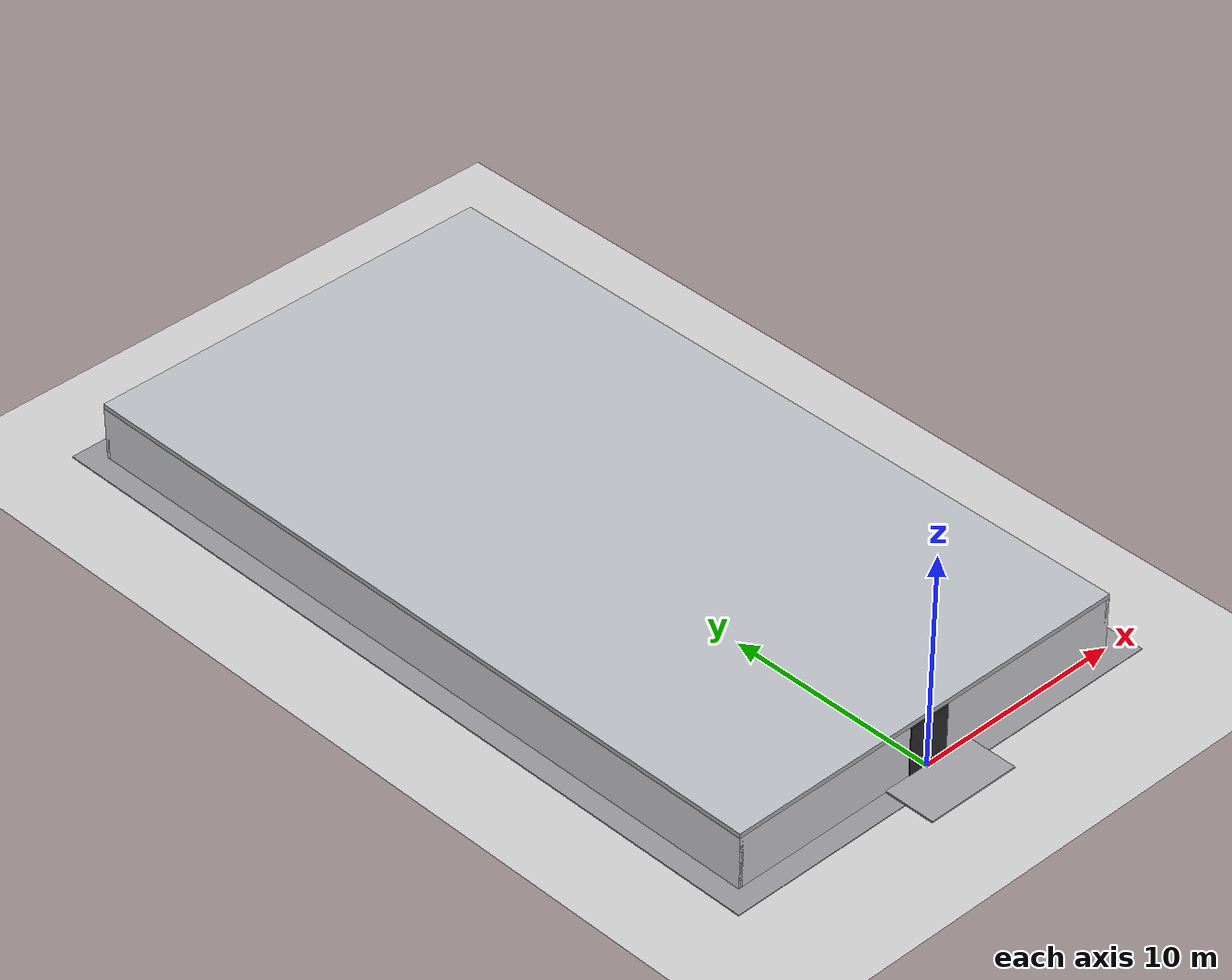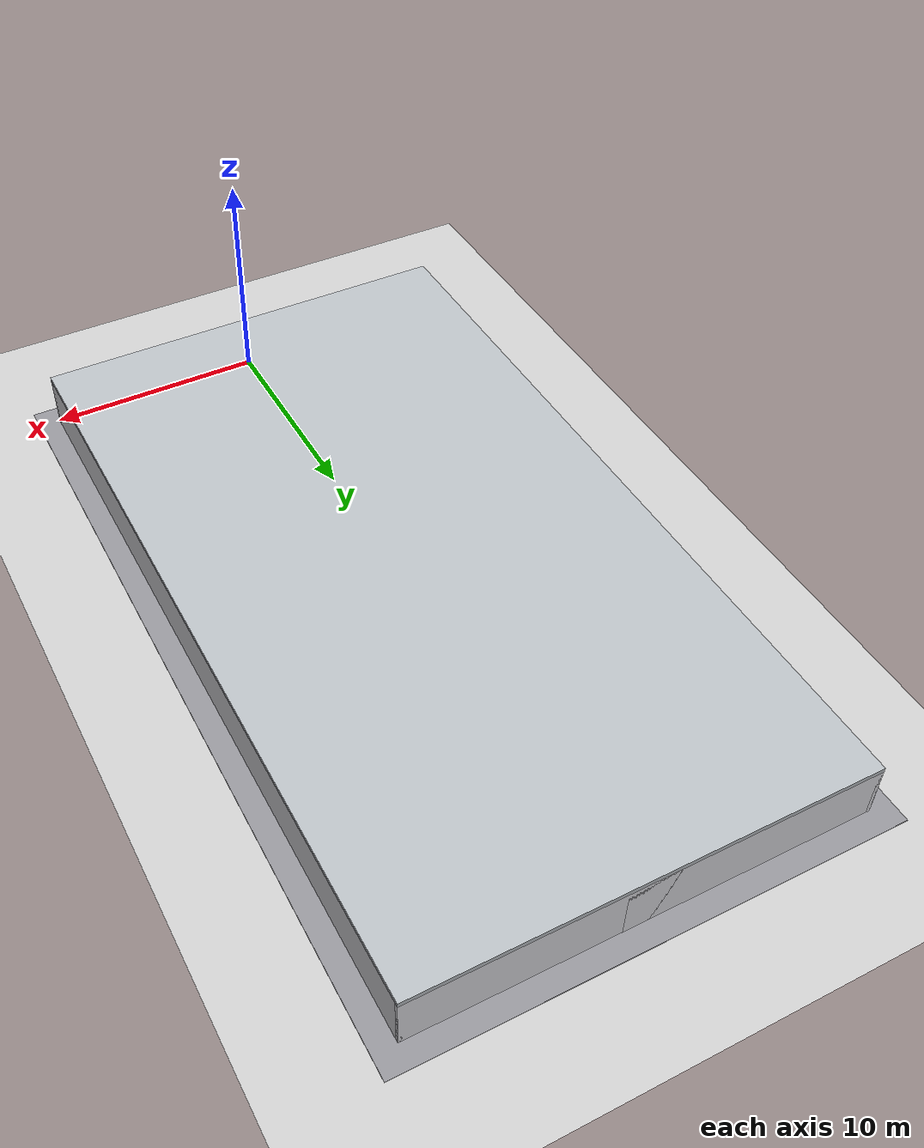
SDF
<?xml version="1.0" ?>
<sdf version="1.7">

  <world name="generated_world">

    <physics name="default_physics" default="0" type="ode">
      <max_step_size>0.001000</max_step_size>
      <real_time_factor>1.000000</real_time_factor>
      <real_time_update_rate>1000</real_time_update_rate>
      <gravity>0 0 -9.81</gravity>
      <ode>
        <solver>
          <type>quick</type>
          <iters>20</iters>
          <sor>1.3</sor>
        </solver>
        <constraints>
          <cfm>0.0</cfm>
          <erp>0.2</erp>
          <contact_max_correcting_vel>5.000000</contact_max_correcting_vel>
          <contact_surface_layer>0.001</contact_surface_layer>
        </constraints>
      </ode>
    </physics>
    <include>

      <uri>model://sun</uri>

    </include>

    <include>

      <uri>model://ground_plane</uri>

    </include>

    <model name="generated_building">

      <static>true</static>

      <pose>0 0 0 0 0 0</pose>

      <link name="foundation">

        <pose>0.0000 18.0000 -0.1500 0.0000 0.0000 0.0000</pose>

        <collision name="foundation_collision">

          <geometry>

            <box>

              <size>22.0000 38.0000 0.3000</size>

            </box>

          </geometry>

        </collision>

        <visual name="foundation_visual">

          <geometry>

            <box>

              <size>22.0000 38.0000 0.3000</size>

            </box>

          </geometry>

          <material>

            <ambient>0.58 0.58 0.60 1</ambient>

            <diffuse>0.58 0.58 0.60 1</diffuse>

          </material>

        </visual>

        <gravity>false</gravity>

      </link>

      <link name="entrance_apron">

        <pose>0.0000 -1.2000 0.0400 0.0000 0.0000 0.0000</pose>

        <collision name="entrance_apron_collision">

          <geometry>

            <box>

              <size>4.5000 2.4000 0.0800</size>

            </box>

          </geometry>

        </collision>

        <visual name="entrance_apron_visual">

          <geometry>

            <box>

              <size>4.5000 2.4000 0.0800</size>

            </box>

          </geometry>

          <material>

            <ambient>0.62 0.62 0.64 1</ambient>

            <diffuse>0.62 0.62 0.64 1</diffuse>

          </material>

        </visual>

        <gravity>false</gravity>

      </link>

      <link name="slab_floor_0_0">

        <pose>0.0000 21.9250 -0.1100 0.0000 0.0000 0.0000</pose>

        <collision name="slab_floor_0_0_collision">

          <geometry>

            <box>

              <size>20.0000 28.1500 0.2200</size>

            </box>

          </geometry>

        </collision>

        <visual name="slab_floor_0_0_visual">

          <geometry>

            <box>

              <size>20.0000 28.1500 0.2200</size>

            </box>

          </geometry>

          <material>

            <ambient>0.76 0.76 0.77 1</ambient>

            <diffuse>0.76 0.76 0.77 1</diffuse>

          </material>

        </visual>

        <gravity>false</gravity>

      </link>

      <link name="slab_floor_0_1">

        <pose>-7.4700 3.9250 -0.1100 0.0000 0.0000 0.0000</pose>

        <collision name="slab_floor_0_1_collision">

          <geometry>

            <box>

              <size>5.0600 7.8500 0.2200</size>

            </box>

          </geometry>

        </collision>

        <visual name="slab_floor_0_1_visual">

          <geometry>

            <box>

              <size>5.0600 7.8500 0.2200</size>

            </box>

          </geometry>

          <material>

            <ambient>0.76 0.76 0.77 1</ambient>

            <diffuse>0.76 0.76 0.77 1</diffuse>

          </material>

        </visual>

        <gravity>false</gravity>

      </link>

      <link name="slab_floor_0_2">

        <pose>-1.3300 3.9250 -0.1100 0.0000 0.0000 0.0000</pose>

        <collision name="slab_floor_0_2_collision">

          <geometry>

            <box>

              <size>0.4600 7.8500 0.2200</size>

            </box>

          </geometry>

        </collision>

        <visual name="slab_floor_0_2_visual">

          <geometry>

            <box>

              <size>0.4600 7.8500 0.2200</size>

            </box>

          </geometry>

          <material>

            <ambient>0.76 0.76 0.77 1</ambient>

            <diffuse>0.76 0.76 0.77 1</diffuse>

          </material>

        </visual>

        <gravity>false</gravity>

      </link>

      <link name="slab_floor_0_3">

        <pose>0.0000 3.9250 -0.1100 0.0000 0.0000 0.0000</pose>

        <collision name="slab_floor_0_3_collision">

          <geometry>

            <box>

              <size>2.2000 7.8500 0.2200</size>

            </box>

          </geometry>

        </collision>

        <visual name="slab_floor_0_3_visual">

          <geometry>

            <box>

              <size>2.2000 7.8500 0.2200</size>

            </box>

          </geometry>

          <material>

            <ambient>0.76 0.76 0.77 1</ambient>

            <diffuse>0.76 0.76 0.77 1</diffuse>

          </material>

        </visual>

        <gravity>false</gravity>

      </link>

      <link name="slab_floor_0_4">

        <pose>1.3300 3.9250 -0.1100 0.0000 0.0000 0.0000</pose>

        <collision name="slab_floor_0_4_collision">

          <geometry>

            <box>

              <size>0.4600 7.8500 0.2200</size>

            </box>

          </geometry>

        </collision>

        <visual name="slab_floor_0_4_visual">

          <geometry>

            <box>

              <size>0.4600 7.8500 0.2200</size>

            </box>

          </geometry>

          <material>

            <ambient>0.76 0.76 0.77 1</ambient>

            <diffuse>0.76 0.76 0.77 1</diffuse>

          </material>

        </visual>

        <gravity>false</gravity>

      </link>

      <link name="slab_floor_0_5">

        <pose>7.0700 3.9250 -0.1100 0.0000 0.0000 0.0000</pose>

        <collision name="slab_floor_0_5_collision">

          <geometry>

            <box>

              <size>5.8600 7.8500 0.2200</size>

            </box>

          </geometry>

        </collision>

        <visual name="slab_floor_0_5_visual">

          <geometry>

            <box>

              <size>5.8600 7.8500 0.2200</size>

            </box>

          </geometry>

          <material>

            <ambient>0.76 0.76 0.77 1</ambient>

            <diffuse>0.76 0.76 0.77 1</diffuse>

          </material>

        </visual>

        <gravity>false</gravity>

      </link>

      <link name="stair_edge_infill_floor_0">

        <pose>-1.6500 3.8500 -0.1100 0.0000 0.0000 0.0000</pose>

        <collision name="stair_edge_infill_floor_0_collision">

          <geometry>

            <box>

              <size>0.1800 6.0000 0.2200</size>

            </box>

          </geometry>

        </collision>

        <visual name="stair_edge_infill_floor_0_visual">

          <geometry>

            <box>

              <size>0.1800 6.0000 0.2200</size>

            </box>

          </geometry>

          <material>

            <ambient>0.76 0.76 0.77 1</ambient>

            <diffuse>0.76 0.76 0.77 1</diffuse>

          </material>

        </visual>

        <gravity>false</gravity>

      </link>

      <link name="exterior_west_floor_0">

        <pose>-9.9100 18.0000 1.2250 0.0000 0.0000 0.0000</pose>

        <collision name="exterior_west_floor_0_collision">

          <geometry>

            <box>

              <size>0.1800 36.0000 2.4500</size>

            </box>

          </geometry>

        </collision>

        <visual name="exterior_west_floor_0_visual">

          <geometry>

            <box>

              <size>0.1800 36.0000 2.4500</size>

            </box>

          </geometry>

          <material>

            <ambient>0.86 0.86 0.88 1</ambient>

            <diffuse>0.86 0.86 0.88 1</diffuse>

          </material>

        </visual>

        <gravity>false</gravity>

      </link>

      <link name="exterior_east_floor_0">

        <pose>9.9100 18.0000 1.2250 0.0000 0.0000 0.0000</pose>

        <collision name="exterior_east_floor_0_collision">

          <geometry>

            <box>

              <size>0.1800 36.0000 2.4500</size>

            </box>

          </geometry>

        </collision>

        <visual name="exterior_east_floor_0_visual">

          <geometry>

            <box>

              <size>0.1800 36.0000 2.4500</size>

            </box>

          </geometry>

          <material>

            <ambient>0.86 0.86 0.88 1</ambient>

            <diffuse>0.86 0.86 0.88 1</diffuse>

          </material>

        </visual>

        <gravity>false</gravity>

      </link>

      <link name="exterior_north_floor_0">

        <pose>0.0000 35.9100 1.2250 0.0000 0.0000 0.0000</pose>

        <collision name="exterior_north_floor_0_collision">

          <geometry>

            <box>

              <size>20.0000 0.1800 2.4500</size>

            </box>

          </geometry>

        </collision>

        <visual name="exterior_north_floor_0_visual">

          <geometry>

            <box>

              <size>20.0000 0.1800 2.4500</size>

            </box>

          </geometry>

          <material>

            <ambient>0.86 0.86 0.88 1</ambient>

            <diffuse>0.86 0.86 0.88 1</diffuse>

          </material>

        </visual>

        <gravity>false</gravity>

      </link>

      <link name="exterior_south_entrance_left">

        <pose>-5.5100 0.0900 1.2250 0.0000 0.0000 0.0000</pose>

        <collision name="exterior_south_entrance_left_collision">

          <geometry>

            <box>

              <size>8.9800 0.1800 2.4500</size>

            </box>

          </geometry>

        </collision>

        <visual name="exterior_south_entrance_left_visual">

          <geometry>

            <box>

              <size>8.9800 0.1800 2.4500</size>

            </box>

          </geometry>

          <material>

            <ambient>0.86 0.86 0.88 1</ambient>

            <diffuse>0.86 0.86 0.88 1</diffuse>

          </material>

        </visual>

        <gravity>false</gravity>

      </link>

      <link name="exterior_south_entrance_right">

        <pose>5.5100 0.0900 1.2250 0.0000 0.0000 0.0000</pose>

        <collision name="exterior_south_entrance_right_collision">

          <geometry>

            <box>

              <size>8.9800 0.1800 2.4500</size>

            </box>

          </geometry>

        </collision>

        <visual name="exterior_south_entrance_right_visual">

          <geometry>

            <box>

              <size>8.9800 0.1800 2.4500</size>

            </box>

          </geometry>

          <material>

            <ambient>0.86 0.86 0.88 1</ambient>

            <diffuse>0.86 0.86 0.88 1</diffuse>

          </material>

        </visual>

        <gravity>false</gravity>

      </link>

      <link name="north_end_wall_floor_0">

        <pose>0.0000 35.9100 1.2250 0.0000 0.0000 0.0000</pose>

        <collision name="north_end_wall_floor_0_collision">

          <geometry>

            <box>

              <size>2.2000 0.1800 2.4500</size>

            </box>

          </geometry>

        </collision>

        <visual name="north_end_wall_floor_0_visual">

          <geometry>

            <box>

              <size>2.2000 0.1800 2.4500</size>

            </box>

          </geometry>

          <material>

            <ambient>0.86 0.86 0.88 1</ambient>

            <diffuse>0.86 0.86 0.88 1</diffuse>

          </material>

        </visual>

        <gravity>false</gravity>

      </link>

      <link name="floor_0_room_0_corridor_wall_lower">

        <pose>-1.1900 11.0575 1.2250 0.0000 0.0000 0.0000</pose>

        <collision name="floor_0_room_0_corridor_wall_lower_collision">

          <geometry>

            <box>

              <size>0.1800 6.4150 2.4500</size>

            </box>

          </geometry>

        </collision>

        <visual name="floor_0_room_0_corridor_wall_lower_visual">

          <geometry>

            <box>

              <size>0.1800 6.4150 2.4500</size>

            </box>

          </geometry>

          <material>

            <ambient>0.86 0.86 0.88 1</ambient>

            <diffuse>0.86 0.86 0.88 1</diffuse>

          </material>

        </visual>

        <gravity>false</gravity>

      </link>

      <link name="floor_0_room_0_corridor_wall_upper">

        <pose>-1.1900 18.6725 1.2250 0.0000 0.0000 0.0000</pose>

        <collision name="floor_0_room_0_corridor_wall_upper_collision">

          <geometry>

            <box>

              <size>0.1800 6.4150 2.4500</size>

            </box>

          </geometry>

        </collision>

        <visual name="floor_0_room_0_corridor_wall_upper_visual">

          <geometry>

            <box>

              <size>0.1800 6.4150 2.4500</size>

            </box>

          </geometry>

          <material>

            <ambient>0.86 0.86 0.88 1</ambient>

            <diffuse>0.86 0.86 0.88 1</diffuse>

          </material>

        </visual>

        <gravity>false</gravity>

      </link>

      <link name="floor_0_room_0_west_wall">

        <pose>-9.4100 14.8650 1.2250 0.0000 0.0000 0.0000</pose>

        <collision name="floor_0_room_0_west_wall_collision">

          <geometry>

            <box>

              <size>0.1800 14.0300 2.4500</size>

            </box>

          </geometry>

        </collision>

        <visual name="floor_0_room_0_west_wall_visual">

          <geometry>

            <box>

              <size>0.1800 14.0300 2.4500</size>

            </box>

          </geometry>

          <material>

            <ambient>0.86 0.86 0.88 1</ambient>

            <diffuse>0.86 0.86 0.88 1</diffuse>

          </material>

        </visual>

        <gravity>false</gravity>

      </link>

      <link name="floor_0_room_0_south_wall">

        <pose>-5.3000 7.9400 1.2250 0.0000 0.0000 0.0000</pose>

        <collision name="floor_0_room_0_south_wall_collision">

          <geometry>

            <box>

              <size>8.4000 0.1800 2.4500</size>

            </box>

          </geometry>

        </collision>

        <visual name="floor_0_room_0_south_wall_visual">

          <geometry>

            <box>

              <size>8.4000 0.1800 2.4500</size>

            </box>

          </geometry>

          <material>

            <ambient>0.86 0.86 0.88 1</ambient>

            <diffuse>0.86 0.86 0.88 1</diffuse>

          </material>

        </visual>

        <gravity>false</gravity>

      </link>

      <link name="floor_0_room_0_north_wall">

        <pose>-5.3000 21.7900 1.2250 0.0000 0.0000 0.0000</pose>

        <collision name="floor_0_room_0_north_wall_collision">

          <geometry>

            <box>

              <size>8.4000 0.1800 2.4500</size>

            </box>

          </geometry>

        </collision>

        <visual name="floor_0_room_0_north_wall_visual">

          <geometry>

            <box>

              <size>8.4000 0.1800 2.4500</size>

            </box>

          </geometry>

          <material>

            <ambient>0.86 0.86 0.88 1</ambient>

            <diffuse>0.86 0.86 0.88 1</diffuse>

          </material>

        </visual>

        <gravity>false</gravity>

      </link>

      <link name="floor_0_room_1_corridor_wall_lower">

        <pose>1.1900 11.0575 1.2250 0.0000 0.0000 0.0000</pose>

        <collision name="floor_0_room_1_corridor_wall_lower_collision">

          <geometry>

            <box>

              <size>0.1800 6.4150 2.4500</size>

            </box>

          </geometry>

        </collision>

        <visual name="floor_0_room_1_corridor_wall_lower_visual">

          <geometry>

            <box>

              <size>0.1800 6.4150 2.4500</size>

            </box>

          </geometry>

          <material>

            <ambient>0.86 0.86 0.88 1</ambient>

            <diffuse>0.86 0.86 0.88 1</diffuse>

          </material>

        </visual>

        <gravity>false</gravity>

      </link>

      <link name="floor_0_room_1_corridor_wall_upper">

        <pose>1.1900 18.6725 1.2250 0.0000 0.0000 0.0000</pose>

        <collision name="floor_0_room_1_corridor_wall_upper_collision">

          <geometry>

            <box>

              <size>0.1800 6.4150 2.4500</size>

            </box>

          </geometry>

        </collision>

        <visual name="floor_0_room_1_corridor_wall_upper_visual">

          <geometry>

            <box>

              <size>0.1800 6.4150 2.4500</size>

            </box>

          </geometry>

          <material>

            <ambient>0.86 0.86 0.88 1</ambient>

            <diffuse>0.86 0.86 0.88 1</diffuse>

          </material>

        </visual>

        <gravity>false</gravity>

      </link>

      <link name="floor_0_room_1_east_wall">

        <pose>9.4100 14.8650 1.2250 0.0000 0.0000 0.0000</pose>

        <collision name="floor_0_room_1_east_wall_collision">

          <geometry>

            <box>

              <size>0.1800 14.0300 2.4500</size>

            </box>

          </geometry>

        </collision>

        <visual name="floor_0_room_1_east_wall_visual">

          <geometry>

            <box>

              <size>0.1800 14.0300 2.4500</size>

            </box>

          </geometry>

          <material>

            <ambient>0.86 0.86 0.88 1</ambient>

            <diffuse>0.86 0.86 0.88 1</diffuse>

          </material>

        </visual>

        <gravity>false</gravity>

      </link>

      <link name="floor_0_room_1_south_wall">

        <pose>5.3000 7.9400 1.2250 0.0000 0.0000 0.0000</pose>

        <collision name="floor_0_room_1_south_wall_collision">

          <geometry>

            <box>

              <size>8.4000 0.1800 2.4500</size>

            </box>

          </geometry>

        </collision>

        <visual name="floor_0_room_1_south_wall_visual">

          <geometry>

            <box>

              <size>8.4000 0.1800 2.4500</size>

            </box>

          </geometry>

          <material>

            <ambient>0.86 0.86 0.88 1</ambient>

            <diffuse>0.86 0.86 0.88 1</diffuse>

          </material>

        </visual>

        <gravity>false</gravity>

      </link>

      <link name="floor_0_room_1_north_wall">

        <pose>5.3000 21.7900 1.2250 0.0000 0.0000 0.0000</pose>

        <collision name="floor_0_room_1_north_wall_collision">

          <geometry>

            <box>

              <size>8.4000 0.1800 2.4500</size>

            </box>

          </geometry>

        </collision>

        <visual name="floor_0_room_1_north_wall_visual">

          <geometry>

            <box>

              <size>8.4000 0.1800 2.4500</size>

            </box>

          </geometry>

          <material>

            <ambient>0.86 0.86 0.88 1</ambient>

            <diffuse>0.86 0.86 0.88 1</diffuse>

          </material>

        </visual>

        <gravity>false</gravity>

      </link>

      <link name="floor_0_room_2_corridor_wall_lower">

        <pose>-1.1900 25.0875 1.2250 0.0000 0.0000 0.0000</pose>

        <collision name="floor_0_room_2_corridor_wall_lower_collision">

          <geometry>

            <box>

              <size>0.1800 6.4150 2.4500</size>

            </box>

          </geometry>

        </collision>

        <visual name="floor_0_room_2_corridor_wall_lower_visual">

          <geometry>

            <box>

              <size>0.1800 6.4150 2.4500</size>

            </box>

          </geometry>

          <material>

            <ambient>0.86 0.86 0.88 1</ambient>

            <diffuse>0.86 0.86 0.88 1</diffuse>

          </material>

        </visual>

        <gravity>false</gravity>

      </link>

      <link name="floor_0_room_2_corridor_wall_upper">

        <pose>-1.1900 32.7025 1.2250 0.0000 0.0000 0.0000</pose>

        <collision name="floor_0_room_2_corridor_wall_upper_collision">

          <geometry>

            <box>

              <size>0.1800 6.4150 2.4500</size>

            </box>

          </geometry>

        </collision>

        <visual name="floor_0_room_2_corridor_wall_upper_visual">

          <geometry>

            <box>

              <size>0.1800 6.4150 2.4500</size>

            </box>

          </geometry>

          <material>

            <ambient>0.86 0.86 0.88 1</ambient>

            <diffuse>0.86 0.86 0.88 1</diffuse>

          </material>

        </visual>

        <gravity>false</gravity>

      </link>

      <link name="floor_0_room_2_west_wall">

        <pose>-9.4100 28.8950 1.2250 0.0000 0.0000 0.0000</pose>

        <collision name="floor_0_room_2_west_wall_collision">

          <geometry>

            <box>

              <size>0.1800 14.0300 2.4500</size>

            </box>

          </geometry>

        </collision>

        <visual name="floor_0_room_2_west_wall_visual">

          <geometry>

            <box>

              <size>0.1800 14.0300 2.4500</size>

            </box>

          </geometry>

          <material>

            <ambient>0.86 0.86 0.88 1</ambient>

            <diffuse>0.86 0.86 0.88 1</diffuse>

          </material>

        </visual>

        <gravity>false</gravity>

      </link>

      <link name="floor_0_room_2_south_wall">

        <pose>-5.3000 21.9700 1.2250 0.0000 0.0000 0.0000</pose>

        <collision name="floor_0_room_2_south_wall_collision">

          <geometry>

            <box>

              <size>8.4000 0.1800 2.4500</size>

            </box>

          </geometry>

        </collision>

        <visual name="floor_0_room_2_south_wall_visual">

          <geometry>

            <box>

              <size>8.4000 0.1800 2.4500</size>

            </box>

          </geometry>

          <material>

            <ambient>0.86 0.86 0.88 1</ambient>

            <diffuse>0.86 0.86 0.88 1</diffuse>

          </material>

        </visual>

        <gravity>false</gravity>

      </link>

      <link name="floor_0_room_2_north_wall">

        <pose>-5.3000 35.8200 1.2250 0.0000 0.0000 0.0000</pose>

        <collision name="floor_0_room_2_north_wall_collision">

          <geometry>

            <box>

              <size>8.4000 0.1800 2.4500</size>

            </box>

          </geometry>

        </collision>

        <visual name="floor_0_room_2_north_wall_visual">

          <geometry>

            <box>

              <size>8.4000 0.1800 2.4500</size>

            </box>

          </geometry>

          <material>

            <ambient>0.86 0.86 0.88 1</ambient>

            <diffuse>0.86 0.86 0.88 1</diffuse>

          </material>

        </visual>

        <gravity>false</gravity>

      </link>

      <link name="floor_0_room_3_corridor_wall_lower">

        <pose>1.1900 25.0875 1.2250 0.0000 0.0000 0.0000</pose>

        <collision name="floor_0_room_3_corridor_wall_lower_collision">

          <geometry>

            <box>

              <size>0.1800 6.4150 2.4500</size>

            </box>

          </geometry>

        </collision>

        <visual name="floor_0_room_3_corridor_wall_lower_visual">

          <geometry>

            <box>

              <size>0.1800 6.4150 2.4500</size>

            </box>

          </geometry>

          <material>

            <ambient>0.86 0.86 0.88 1</ambient>

            <diffuse>0.86 0.86 0.88 1</diffuse>

          </material>

        </visual>

        <gravity>false</gravity>

      </link>

      <link name="floor_0_room_3_corridor_wall_upper">

        <pose>1.1900 32.7025 1.2250 0.0000 0.0000 0.0000</pose>

        <collision name="floor_0_room_3_corridor_wall_upper_collision">

          <geometry>

            <box>

              <size>0.1800 6.4150 2.4500</size>

            </box>

          </geometry>

        </collision>

        <visual name="floor_0_room_3_corridor_wall_upper_visual">

          <geometry>

            <box>

              <size>0.1800 6.4150 2.4500</size>

            </box>

          </geometry>

          <material>

            <ambient>0.86 0.86 0.88 1</ambient>

            <diffuse>0.86 0.86 0.88 1</diffuse>

          </material>

        </visual>

        <gravity>false</gravity>

      </link>

      <link name="floor_0_room_3_east_wall">

        <pose>9.4100 28.8950 1.2250 0.0000 0.0000 0.0000</pose>

        <collision name="floor_0_room_3_east_wall_collision">

          <geometry>

            <box>

              <size>0.1800 14.0300 2.4500</size>

            </box>

          </geometry>

        </collision>

        <visual name="floor_0_room_3_east_wall_visual">

          <geometry>

            <box>

              <size>0.1800 14.0300 2.4500</size>

            </box>

          </geometry>

          <material>

            <ambient>0.86 0.86 0.88 1</ambient>

            <diffuse>0.86 0.86 0.88 1</diffuse>

          </material>

        </visual>

        <gravity>false</gravity>

      </link>

      <link name="floor_0_room_3_south_wall">

        <pose>5.3000 21.9700 1.2250 0.0000 0.0000 0.0000</pose>

        <collision name="floor_0_room_3_south_wall_collision">

          <geometry>

            <box>

              <size>8.4000 0.1800 2.4500</size>

            </box>

          </geometry>

        </collision>

        <visual name="floor_0_room_3_south_wall_visual">

          <geometry>

            <box>

              <size>8.4000 0.1800 2.4500</size>

            </box>

          </geometry>

          <material>

            <ambient>0.86 0.86 0.88 1</ambient>

            <diffuse>0.86 0.86 0.88 1</diffuse>

          </material>

        </visual>

        <gravity>false</gravity>

      </link>

      <link name="floor_0_room_3_north_wall">

        <pose>5.3000 35.8200 1.2250 0.0000 0.0000 0.0000</pose>

        <collision name="floor_0_room_3_north_wall_collision">

          <geometry>

            <box>

              <size>8.4000 0.1800 2.4500</size>

            </box>

          </geometry>

        </collision>

        <visual name="floor_0_room_3_north_wall_visual">

          <geometry>

            <box>

              <size>8.4000 0.1800 2.4500</size>

            </box>

          </geometry>

          <material>

            <ambient>0.86 0.86 0.88 1</ambient>

            <diffuse>0.86 0.86 0.88 1</diffuse>

          </material>

        </visual>

        <gravity>false</gravity>

      </link>

      <link name="stair_core_floor_0_west">

        <pose>-4.7600 3.8500 1.2250 0.0000 0.0000 0.0000</pose>

        <collision name="stair_core_floor_0_west_collision">

          <geometry>

            <box>

              <size>0.1800 6.0000 2.4500</size>

            </box>

          </geometry>

        </collision>

        <visual name="stair_core_floor_0_west_visual">

          <geometry>

            <box>

              <size>0.1800 6.0000 2.4500</size>

            </box>

          </geometry>

          <material>

            <ambient>0.86 0.86 0.88 1</ambient>

            <diffuse>0.86 0.86 0.88 1</diffuse>

          </material>

        </visual>

        <gravity>false</gravity>

      </link>

      <link name="stair_core_floor_0_south">

        <pose>-3.2500 0.9400 1.2250 0.0000 0.0000 0.0000</pose>

        <collision name="stair_core_floor_0_south_collision">

          <geometry>

            <box>

              <size>3.2000 0.1800 2.4500</size>

            </box>

          </geometry>

        </collision>

        <visual name="stair_core_floor_0_south_visual">

          <geometry>

            <box>

              <size>3.2000 0.1800 2.4500</size>

            </box>

          </geometry>

          <material>

            <ambient>0.86 0.86 0.88 1</ambient>

            <diffuse>0.86 0.86 0.88 1</diffuse>

          </material>

        </visual>

        <gravity>false</gravity>

      </link>

      <link name="stair_core_floor_0_north">

        <pose>-3.2500 6.7600 1.2250 0.0000 0.0000 0.0000</pose>

        <collision name="stair_core_floor_0_north_collision">

          <geometry>

            <box>

              <size>3.2000 0.1800 2.4500</size>

            </box>

          </geometry>

        </collision>

        <visual name="stair_core_floor_0_north_visual">

          <geometry>

            <box>

              <size>3.2000 0.1800 2.4500</size>

            </box>

          </geometry>

          <material>

            <ambient>0.86 0.86 0.88 1</ambient>

            <diffuse>0.86 0.86 0.88 1</diffuse>

          </material>

        </visual>

        <gravity>false</gravity>

      </link>

      <link name="elevator_core_floor_0_west_lower">

        <pose>1.7400 1.6150 1.2250 0.0000 0.0000 0.0000</pose>

        <collision name="elevator_core_floor_0_west_lower_collision">

          <geometry>

            <box>

              <size>0.1800 0.7300 2.4500</size>

            </box>

          </geometry>

        </collision>

        <visual name="elevator_core_floor_0_west_lower_visual">

          <geometry>

            <box>

              <size>0.1800 0.7300 2.4500</size>

            </box>

          </geometry>

          <material>

            <ambient>0.86 0.86 0.88 1</ambient>

            <diffuse>0.86 0.86 0.88 1</diffuse>

          </material>

        </visual>

        <gravity>false</gravity>

      </link>

      <link name="elevator_core_floor_0_west_upper">

        <pose>1.7400 3.5850 1.2250 0.0000 0.0000 0.0000</pose>

        <collision name="elevator_core_floor_0_west_upper_collision">

          <geometry>

            <box>

              <size>0.1800 0.7300 2.4500</size>

            </box>

          </geometry>

        </collision>

        <visual name="elevator_core_floor_0_west_upper_visual">

          <geometry>

            <box>

              <size>0.1800 0.7300 2.4500</size>

            </box>

          </geometry>

          <material>

            <ambient>0.86 0.86 0.88 1</ambient>

            <diffuse>0.86 0.86 0.88 1</diffuse>

          </material>

        </visual>

        <gravity>false</gravity>

      </link>

      <link name="elevator_core_floor_0_east">

        <pose>3.9600 2.6000 1.2250 0.0000 0.0000 0.0000</pose>

        <collision name="elevator_core_floor_0_east_collision">

          <geometry>

            <box>

              <size>0.1800 2.7000 2.4500</size>

            </box>

          </geometry>

        </collision>

        <visual name="elevator_core_floor_0_east_visual">

          <geometry>

            <box>

              <size>0.1800 2.7000 2.4500</size>

            </box>

          </geometry>

          <material>

            <ambient>0.86 0.86 0.88 1</ambient>

            <diffuse>0.86 0.86 0.88 1</diffuse>

          </material>

        </visual>

        <gravity>false</gravity>

      </link>

      <link name="elevator_core_floor_0_south">

        <pose>2.8500 1.3400 1.2250 0.0000 0.0000 0.0000</pose>

        <collision name="elevator_core_floor_0_south_collision">

          <geometry>

            <box>

              <size>2.4000 0.1800 2.4500</size>

            </box>

          </geometry>

        </collision>

        <visual name="elevator_core_floor_0_south_visual">

          <geometry>

            <box>

              <size>2.4000 0.1800 2.4500</size>

            </box>

          </geometry>

          <material>

            <ambient>0.86 0.86 0.88 1</ambient>

            <diffuse>0.86 0.86 0.88 1</diffuse>

          </material>

        </visual>

        <gravity>false</gravity>

      </link>

      <link name="elevator_core_floor_0_north">

        <pose>2.8500 3.8600 1.2250 0.0000 0.0000 0.0000</pose>

        <collision name="elevator_core_floor_0_north_collision">

          <geometry>

            <box>

              <size>2.4000 0.1800 2.4500</size>

            </box>

          </geometry>

        </collision>

        <visual name="elevator_core_floor_0_north_visual">

          <geometry>

            <box>

              <size>2.4000 0.1800 2.4500</size>

            </box>

          </geometry>

          <material>

            <ambient>0.86 0.86 0.88 1</ambient>

            <diffuse>0.86 0.86 0.88 1</diffuse>

          </material>

        </visual>

        <gravity>false</gravity>

      </link>

      <link name="elevator_threshold_floor_0">

        <pose>1.5400 2.6000 0.0300 0.0000 0.0000 0.0000</pose>

        <collision name="elevator_threshold_floor_0_collision">

          <geometry>

            <box>

              <size>0.2200 1.5000 0.0600</size>

            </box>

          </geometry>

        </collision>

        <visual name="elevator_threshold_floor_0_visual">

          <geometry>

            <box>

              <size>0.2200 1.5000 0.0600</size>

            </box>

          </geometry>

          <material>

            <ambient>0.50 0.51 0.54 1</ambient>

            <diffuse>0.50 0.51 0.54 1</diffuse>

          </material>

        </visual>

        <gravity>false</gravity>

      </link>

      <link name="elevator_sill_infill_floor_0">

        <pose>1.6750 2.6000 -0.1100 0.0000 0.0000 0.0000</pose>

        <collision name="elevator_sill_infill_floor_0_collision">

          <geometry>

            <box>

              <size>0.0500 2.5200 0.2200</size>

            </box>

          </geometry>

        </collision>

        <visual name="elevator_sill_infill_floor_0_visual">

          <geometry>

            <box>

              <size>0.0500 2.5200 0.2200</size>

            </box>

          </geometry>

          <material>

            <ambient>0.72 0.72 0.73 1</ambient>

            <diffuse>0.72 0.72 0.73 1</diffuse>

          </material>

        </visual>

        <gravity>false</gravity>

      </link>

      <link name="elevator_header_floor_0">

        <pose>1.5900 2.6000 2.2600 0.0000 0.0000 0.0000</pose>

        <collision name="elevator_header_floor_0_collision">

          <geometry>

            <box>

              <size>0.1200 1.6000 0.2800</size>

            </box>

          </geometry>

        </collision>

        <visual name="elevator_header_floor_0_visual">

          <geometry>

            <box>

              <size>0.1200 1.6000 0.2800</size>

            </box>

          </geometry>

          <material>

            <ambient>0.50 0.51 0.54 1</ambient>

            <diffuse>0.50 0.51 0.54 1</diffuse>

          </material>

        </visual>

        <gravity>false</gravity>

      </link>

      <link name="elevator_jamb_left_floor_0">

        <pose>1.5900 1.8500 1.1000 0.0000 0.0000 0.0000</pose>

        <collision name="elevator_jamb_left_floor_0_collision">

          <geometry>

            <box>

              <size>0.1200 0.1000 2.2000</size>

            </box>

          </geometry>

        </collision>

        <visual name="elevator_jamb_left_floor_0_visual">

          <geometry>

            <box>

              <size>0.1200 0.1000 2.2000</size>

            </box>

          </geometry>

          <material>

            <ambient>0.50 0.51 0.54 1</ambient>

            <diffuse>0.50 0.51 0.54 1</diffuse>

          </material>

        </visual>

        <gravity>false</gravity>

      </link>

      <link name="elevator_jamb_right_floor_0">

        <pose>1.5900 3.3500 1.1000 0.0000 0.0000 0.0000</pose>

        <collision name="elevator_jamb_right_floor_0_collision">

          <geometry>

            <box>

              <size>0.1200 0.1000 2.2000</size>

            </box>

          </geometry>

        </collision>

        <visual name="elevator_jamb_right_floor_0_visual">

          <geometry>

            <box>

              <size>0.1200 0.1000 2.2000</size>

            </box>

          </geometry>

          <material>

            <ambient>0.50 0.51 0.54 1</ambient>

            <diffuse>0.50 0.51 0.54 1</diffuse>

          </material>

        </visual>

        <gravity>false</gravity>

      </link>

      <link name="elevator_call_panel_floor_0">

        <pose>1.5700 3.5800 1.2000 0.0000 0.0000 0.0000</pose>

        <collision name="elevator_call_panel_floor_0_collision">

          <geometry>

            <box>

              <size>0.0800 0.2200 0.3200</size>

            </box>

          </geometry>

        </collision>

        <visual name="elevator_call_panel_floor_0_visual">

          <geometry>

            <box>

              <size>0.0800 0.2200 0.3200</size>

            </box>

          </geometry>

          <material>

            <ambient>0.20 0.20 0.24 1</ambient>

            <diffuse>0.20 0.20 0.24 1</diffuse>

          </material>

        </visual>

        <gravity>false</gravity>

      </link>

      <link name="floor_0_room_0_desk">

        <pose>-7.0000 17.9225 0.4500 0.0000 0.0000 0.0000</pose>

        <collision name="floor_0_room_0_desk_collision">

          <geometry>

            <box>

              <size>1.5000 0.7000 0.7500</size>

            </box>

          </geometry>

        </collision>

        <visual name="floor_0_room_0_desk_visual">

          <geometry>

            <box>

              <size>1.5000 0.7000 0.7500</size>

            </box>

          </geometry>

          <material>

            <ambient>0.54 0.43 0.34 1</ambient>

            <diffuse>0.54 0.43 0.34 1</diffuse>

          </material>

        </visual>

        <gravity>false</gravity>

      </link>

      <link name="floor_0_room_0_chair">

        <pose>-7.0000 17.0225 0.2800 0.0000 0.0000 0.0000</pose>

        <collision name="floor_0_room_0_chair_collision">

          <geometry>

            <box>

              <size>0.5500 0.5500 0.5500</size>

            </box>

          </geometry>

        </collision>

        <visual name="floor_0_room_0_chair_visual">

          <geometry>

            <box>

              <size>0.5500 0.5500 0.5500</size>

            </box>

          </geometry>

          <material>

            <ambient>0.30 0.30 0.34 1</ambient>

            <diffuse>0.30 0.30 0.34 1</diffuse>

          </material>

        </visual>

        <gravity>false</gravity>

      </link>

      <link name="floor_0_room_0_cabinet">

        <pose>-3.6000 11.8075 0.9000 0.0000 0.0000 0.0000</pose>

        <collision name="floor_0_room_0_cabinet_collision">

          <geometry>

            <box>

              <size>0.6000 1.0000 1.8000</size>

            </box>

          </geometry>

        </collision>

        <visual name="floor_0_room_0_cabinet_visual">

          <geometry>

            <box>

              <size>0.6000 1.0000 1.8000</size>

            </box>

          </geometry>

          <material>

            <ambient>0.72 0.72 0.74 1</ambient>

            <diffuse>0.72 0.72 0.74 1</diffuse>

          </material>

        </visual>

        <gravity>false</gravity>

      </link>

      <link name="floor_0_room_0_side_table">

        <pose>-3.6000 17.9225 0.3200 0.0000 0.0000 0.0000</pose>

        <collision name="floor_0_room_0_side_table_collision">

          <geometry>

            <box>

              <size>0.7000 0.7000 0.4500</size>

            </box>

          </geometry>

        </collision>

        <visual name="floor_0_room_0_side_table_visual">

          <geometry>

            <box>

              <size>0.7000 0.7000 0.4500</size>

            </box>

          </geometry>

          <material>

            <ambient>0.52 0.42 0.33 1</ambient>

            <diffuse>0.52 0.42 0.33 1</diffuse>

          </material>

        </visual>

        <gravity>false</gravity>

      </link>

      <link name="floor_0_room_0_planter">

        <pose>-5.3000 11.8075 0.4500 0.0000 0.0000 0.0000</pose>

        <collision name="floor_0_room_0_planter_collision">

          <geometry>

            <box>

              <size>0.4500 0.4500 0.9000</size>

            </box>

          </geometry>

        </collision>

        <visual name="floor_0_room_0_planter_visual">

          <geometry>

            <box>

              <size>0.4500 0.4500 0.9000</size>

            </box>

          </geometry>

          <material>

            <ambient>0.28 0.46 0.30 1</ambient>

            <diffuse>0.28 0.46 0.30 1</diffuse>

          </material>

        </visual>

        <gravity>false</gravity>

      </link>

      <link name="floor_0_room_1_sofa_a">

        <pose>3.6000 11.8075 0.4500 0.0000 0.0000 0.0000</pose>

        <collision name="floor_0_room_1_sofa_a_collision">

          <geometry>

            <box>

              <size>1.8000 0.8000 0.8000</size>

            </box>

          </geometry>

        </collision>

        <visual name="floor_0_room_1_sofa_a_visual">

          <geometry>

            <box>

              <size>1.8000 0.8000 0.8000</size>

            </box>

          </geometry>

          <material>

            <ambient>0.24 0.36 0.54 1</ambient>

            <diffuse>0.24 0.36 0.54 1</diffuse>

          </material>

        </visual>

        <gravity>false</gravity>

      </link>

      <link name="floor_0_room_1_sofa_b">

        <pose>7.0000 11.8075 0.4500 0.0000 0.0000 3.1400</pose>

        <collision name="floor_0_room_1_sofa_b_collision">

          <geometry>

            <box>

              <size>1.8000 0.8000 0.8000</size>

            </box>

          </geometry>

        </collision>

        <visual name="floor_0_room_1_sofa_b_visual">

          <geometry>

            <box>

              <size>1.8000 0.8000 0.8000</size>

            </box>

          </geometry>

          <material>

            <ambient>0.24 0.36 0.54 1</ambient>

            <diffuse>0.24 0.36 0.54 1</diffuse>

          </material>

        </visual>

        <gravity>false</gravity>

      </link>

      <link name="floor_0_room_1_coffee_table">

        <pose>5.3000 14.8650 0.2500 0.0000 0.0000 0.0000</pose>

        <collision name="floor_0_room_1_coffee_table_collision">

          <geometry>

            <box>

              <size>0.8000 0.6000 0.4000</size>

            </box>

          </geometry>

        </collision>

        <visual name="floor_0_room_1_coffee_table_visual">

          <geometry>

            <box>

              <size>0.8000 0.6000 0.4000</size>

            </box>

          </geometry>

          <material>

            <ambient>0.60 0.48 0.34 1</ambient>

            <diffuse>0.60 0.48 0.34 1</diffuse>

          </material>

        </visual>

        <gravity>false</gravity>

      </link>

      <link name="floor_0_room_1_bookshelf">

        <pose>7.0000 17.9225 0.8500 0.0000 0.0000 0.0000</pose>

        <collision name="floor_0_room_1_bookshelf_collision">

          <geometry>

            <box>

              <size>0.4500 1.2000 1.7000</size>

            </box>

          </geometry>

        </collision>

        <visual name="floor_0_room_1_bookshelf_visual">

          <geometry>

            <box>

              <size>0.4500 1.2000 1.7000</size>

            </box>

          </geometry>

          <material>

            <ambient>0.50 0.40 0.30 1</ambient>

            <diffuse>0.50 0.40 0.30 1</diffuse>

          </material>

        </visual>

        <gravity>false</gravity>

      </link>

      <link name="floor_0_room_1_planter">

        <pose>3.6000 17.9225 0.4500 0.0000 0.0000 0.0000</pose>

        <collision name="floor_0_room_1_planter_collision">

          <geometry>

            <box>

              <size>0.4500 0.4500 0.9000</size>

            </box>

          </geometry>

        </collision>

        <visual name="floor_0_room_1_planter_visual">

          <geometry>

            <box>

              <size>0.4500 0.4500 0.9000</size>

            </box>

          </geometry>

          <material>

            <ambient>0.28 0.46 0.30 1</ambient>

            <diffuse>0.28 0.46 0.30 1</diffuse>

          </material>

        </visual>

        <gravity>false</gravity>

      </link>

      <link name="floor_0_room_2_sofa_a">

        <pose>-7.0000 25.8375 0.4500 0.0000 0.0000 0.0000</pose>

        <collision name="floor_0_room_2_sofa_a_collision">

          <geometry>

            <box>

              <size>1.8000 0.8000 0.8000</size>

            </box>

          </geometry>

        </collision>

        <visual name="floor_0_room_2_sofa_a_visual">

          <geometry>

            <box>

              <size>1.8000 0.8000 0.8000</size>

            </box>

          </geometry>

          <material>

            <ambient>0.24 0.36 0.54 1</ambient>

            <diffuse>0.24 0.36 0.54 1</diffuse>

          </material>

        </visual>

        <gravity>false</gravity>

      </link>

      <link name="floor_0_room_2_sofa_b">

        <pose>-3.6000 25.8375 0.4500 0.0000 0.0000 3.1400</pose>

        <collision name="floor_0_room_2_sofa_b_collision">

          <geometry>

            <box>

              <size>1.8000 0.8000 0.8000</size>

            </box>

          </geometry>

        </collision>

        <visual name="floor_0_room_2_sofa_b_visual">

          <geometry>

            <box>

              <size>1.8000 0.8000 0.8000</size>

            </box>

          </geometry>

          <material>

            <ambient>0.24 0.36 0.54 1</ambient>

            <diffuse>0.24 0.36 0.54 1</diffuse>

          </material>

        </visual>

        <gravity>false</gravity>

      </link>

      <link name="floor_0_room_2_coffee_table">

        <pose>-5.3000 28.8950 0.2500 0.0000 0.0000 0.0000</pose>

        <collision name="floor_0_room_2_coffee_table_collision">

          <geometry>

            <box>

              <size>0.8000 0.6000 0.4000</size>

            </box>

          </geometry>

        </collision>

        <visual name="floor_0_room_2_coffee_table_visual">

          <geometry>

            <box>

              <size>0.8000 0.6000 0.4000</size>

            </box>

          </geometry>

          <material>

            <ambient>0.60 0.48 0.34 1</ambient>

            <diffuse>0.60 0.48 0.34 1</diffuse>

          </material>

        </visual>

        <gravity>false</gravity>

      </link>

      <link name="floor_0_room_2_bookshelf">

        <pose>-3.6000 31.9525 0.8500 0.0000 0.0000 0.0000</pose>

        <collision name="floor_0_room_2_bookshelf_collision">

          <geometry>

            <box>

              <size>0.4500 1.2000 1.7000</size>

            </box>

          </geometry>

        </collision>

        <visual name="floor_0_room_2_bookshelf_visual">

          <geometry>

            <box>

              <size>0.4500 1.2000 1.7000</size>

            </box>

          </geometry>

          <material>

            <ambient>0.50 0.40 0.30 1</ambient>

            <diffuse>0.50 0.40 0.30 1</diffuse>

          </material>

        </visual>

        <gravity>false</gravity>

      </link>

      <link name="floor_0_room_2_planter">

        <pose>-7.0000 31.9525 0.4500 0.0000 0.0000 0.0000</pose>

        <collision name="floor_0_room_2_planter_collision">

          <geometry>

            <box>

              <size>0.4500 0.4500 0.9000</size>

            </box>

          </geometry>

        </collision>

        <visual name="floor_0_room_2_planter_visual">

          <geometry>

            <box>

              <size>0.4500 0.4500 0.9000</size>

            </box>

          </geometry>

          <material>

            <ambient>0.28 0.46 0.30 1</ambient>

            <diffuse>0.28 0.46 0.30 1</diffuse>

          </material>

        </visual>

        <gravity>false</gravity>

      </link>

      <link name="floor_0_room_3_desk">

        <pose>3.6000 31.9525 0.4500 0.0000 0.0000 0.0000</pose>

        <collision name="floor_0_room_3_desk_collision">

          <geometry>

            <box>

              <size>1.5000 0.7000 0.7500</size>

            </box>

          </geometry>

        </collision>

        <visual name="floor_0_room_3_desk_visual">

          <geometry>

            <box>

              <size>1.5000 0.7000 0.7500</size>

            </box>

          </geometry>

          <material>

            <ambient>0.54 0.43 0.34 1</ambient>

            <diffuse>0.54 0.43 0.34 1</diffuse>

          </material>

        </visual>

        <gravity>false</gravity>

      </link>

      <link name="floor_0_room_3_chair">

        <pose>3.6000 31.0525 0.2800 0.0000 0.0000 0.0000</pose>

        <collision name="floor_0_room_3_chair_collision">

          <geometry>

            <box>

              <size>0.5500 0.5500 0.5500</size>

            </box>

          </geometry>

        </collision>

        <visual name="floor_0_room_3_chair_visual">

          <geometry>

            <box>

              <size>0.5500 0.5500 0.5500</size>

            </box>

          </geometry>

          <material>

            <ambient>0.30 0.30 0.34 1</ambient>

            <diffuse>0.30 0.30 0.34 1</diffuse>

          </material>

        </visual>

        <gravity>false</gravity>

      </link>

      <link name="floor_0_room_3_cabinet">

        <pose>7.0000 25.8375 0.9000 0.0000 0.0000 0.0000</pose>

        <collision name="floor_0_room_3_cabinet_collision">

          <geometry>

            <box>

              <size>0.6000 1.0000 1.8000</size>

            </box>

          </geometry>

        </collision>

        <visual name="floor_0_room_3_cabinet_visual">

          <geometry>

            <box>

              <size>0.6000 1.0000 1.8000</size>

            </box>

          </geometry>

          <material>

            <ambient>0.72 0.72 0.74 1</ambient>

            <diffuse>0.72 0.72 0.74 1</diffuse>

          </material>

        </visual>

        <gravity>false</gravity>

      </link>

      <link name="floor_0_room_3_side_table">

        <pose>7.0000 31.9525 0.3200 0.0000 0.0000 0.0000</pose>

        <collision name="floor_0_room_3_side_table_collision">

          <geometry>

            <box>

              <size>0.7000 0.7000 0.4500</size>

            </box>

          </geometry>

        </collision>

        <visual name="floor_0_room_3_side_table_visual">

          <geometry>

            <box>

              <size>0.7000 0.7000 0.4500</size>

            </box>

          </geometry>

          <material>

            <ambient>0.52 0.42 0.33 1</ambient>

            <diffuse>0.52 0.42 0.33 1</diffuse>

          </material>

        </visual>

        <gravity>false</gravity>

      </link>

      <link name="floor_0_room_3_planter">

        <pose>5.3000 25.8375 0.4500 0.0000 0.0000 0.0000</pose>

        <collision name="floor_0_room_3_planter_collision">

          <geometry>

            <box>

              <size>0.4500 0.4500 0.9000</size>

            </box>

          </geometry>

        </collision>

        <visual name="floor_0_room_3_planter_visual">

          <geometry>

            <box>

              <size>0.4500 0.4500 0.9000</size>

            </box>

          </geometry>

          <material>

            <ambient>0.28 0.46 0.30 1</ambient>

            <diffuse>0.28 0.46 0.30 1</diffuse>

          </material>

        </visual>

        <gravity>false</gravity>

      </link>

      <link name="stair_floor_landing_floor_0">

        <pose>-3.2500 1.5500 -0.0900 0.0000 0.0000 0.0000</pose>

        <collision name="stair_floor_landing_floor_0_collision">

          <geometry>

            <box>

              <size>3.0200 1.0000 0.1800</size>

            </box>

          </geometry>

        </collision>

        <visual name="stair_floor_landing_floor_0_visual">

          <geometry>

            <box>

              <size>3.0200 1.0000 0.1800</size>

            </box>

          </geometry>

          <material>

            <ambient>0.68 0.68 0.70 1</ambient>

            <diffuse>0.68 0.68 0.70 1</diffuse>

          </material>

        </visual>

        <gravity>false</gravity>

      </link>

      <link name="roof">

        <pose>0.0000 18.0000 2.5600 0.0000 0.0000 0.0000</pose>

        <collision name="roof_collision">

          <geometry>

            <box>

              <size>20.0000 36.0000 0.2200</size>

            </box>

          </geometry>

        </collision>

        <visual name="roof_visual">

          <geometry>

            <box>

              <size>20.0000 36.0000 0.2200</size>

            </box>

          </geometry>

          <material>

            <ambient>0.72 0.74 0.76 1</ambient>

            <diffuse>0.72 0.74 0.76 1</diffuse>

          </material>

        </visual>

        <gravity>false</gravity>

      </link>

    </model>

    <model name="dynamic_main_entrance">

      <static>false</static>

      <pose>0.0000 0.0000 1.2000 0.0000 0.0000 1.5708</pose>

      <link name="left_panel">

        <gravity>false</gravity>

        <kinematic>true</kinematic>

        <pose>0.0000 -0.5000 0.0000 0.0000 0.0000 0.0000</pose>

        <collision name="left_panel_collision">

          <geometry>

            <box>

              <size>0.0600 1.0000 2.4000</size>

            </box>

          </geometry>

        </collision>

        <visual name="left_panel_visual">

          <geometry>

            <box>

              <size>0.0600 1.0000 2.4000</size>

            </box>

          </geometry>

          <material>

            <ambient>0.18 0.18 0.20 1</ambient>

            <diffuse>0.18 0.18 0.20 1</diffuse>

          </material>

        </visual>

      </link>

      <link name="right_panel">

        <gravity>false</gravity>

        <kinematic>true</kinematic>

        <pose>0.0000 0.5000 0.0000 0.0000 0.0000 0.0000</pose>

        <collision name="right_panel_collision">

          <geometry>

            <box>

              <size>0.0600 1.0000 2.4000</size>

            </box>

          </geometry>

        </collision>

        <visual name="right_panel_visual">

          <geometry>

            <box>

              <size>0.0600 1.0000 2.4000</size>

            </box>

          </geometry>

          <material>

            <ambient>0.18 0.18 0.20 1</ambient>

            <diffuse>0.18 0.18 0.20 1</diffuse>

          </material>

        </visual>

      </link>

    </model>

    <model name="dynamic_elevator_floor_0">

      <static>false</static>

      <pose>1.6500 2.6000 1.2000 0.0000 0.0000 3.1416</pose>

      <link name="left_panel">

        <gravity>false</gravity>

        <kinematic>true</kinematic>

        <pose>0.0000 -0.3500 0.0000 0.0000 0.0000 0.0000</pose>

        <collision name="left_panel_collision">

          <geometry>

            <box>

              <size>0.0600 0.7000 2.2000</size>

            </box>

          </geometry>

        </collision>

        <visual name="left_panel_visual">

          <geometry>

            <box>

              <size>0.0600 0.7000 2.2000</size>

            </box>

          </geometry>

          <material>

            <ambient>0.18 0.18 0.20 1</ambient>

            <diffuse>0.18 0.18 0.20 1</diffuse>

          </material>

        </visual>

      </link>

      <link name="right_panel">

        <gravity>false</gravity>

        <kinematic>true</kinematic>

        <pose>0.0000 0.3500 0.0000 0.0000 0.0000 0.0000</pose>

        <collision name="right_panel_collision">

          <geometry>

            <box>

              <size>0.0600 0.7000 2.2000</size>

            </box>

          </geometry>

        </collision>

        <visual name="right_panel_visual">

          <geometry>

            <box>

              <size>0.0600 0.7000 2.2000</size>

            </box>

          </geometry>

          <material>

            <ambient>0.18 0.18 0.20 1</ambient>

            <diffuse>0.18 0.18 0.20 1</diffuse>

          </material>

        </visual>

      </link>

    </model>

    <model name="dynamic_elevator_main">

      <static>false</static>

      <pose>2.7600 2.6000 1.0300 0.0000 0.0000 -1.5708</pose>

      <link name="car">

        <gravity>false</gravity>

        <kinematic>true</kinematic>

        <pose>0 0 0 0 0 0</pose>

        <collision name="car_floor_collision">

          <pose>0.0000 0.0000 -1.0900 0.0000 0.0000 0.0000</pose>

          <geometry>

            <box>

              <size>1.9000 2.1000 0.1200</size>

            </box>

          </geometry>

        </collision>

        <visual name="car_floor_visual">

          <pose>0.0000 0.0000 -1.0900 0.0000 0.0000 0.0000</pose>

          <geometry>

            <box>

              <size>1.9000 2.1000 0.1200</size>

            </box>

          </geometry>

          <material>

            <ambient>0.32 0.32 0.35 1</ambient>

            <diffuse>0.32 0.32 0.35 1</diffuse>

          </material>

        </visual>

        <collision name="back_collision">

          <pose>0.0000 1.0100 0.0000 0.0000 0.0000 0.0000</pose>

          <geometry>

            <box>

              <size>1.9000 0.0800 2.3000</size>

            </box>

          </geometry>

        </collision>

        <visual name="back_visual">

          <pose>0.0000 1.0100 0.0000 0.0000 0.0000 0.0000</pose>

          <geometry>

            <box>

              <size>1.9000 0.0800 2.3000</size>

            </box>

          </geometry>

          <material>

            <ambient>0.55 0.56 0.58 1</ambient>

            <diffuse>0.55 0.56 0.58 1</diffuse>

          </material>

        </visual>

        <collision name="left_collision">

          <pose>-0.9100 0.0000 0.0000 0.0000 0.0000 0.0000</pose>

          <geometry>

            <box>

              <size>0.0800 2.1000 2.3000</size>

            </box>

          </geometry>

        </collision>

        <visual name="left_visual">

          <pose>-0.9100 0.0000 0.0000 0.0000 0.0000 0.0000</pose>

          <geometry>

            <box>

              <size>0.0800 2.1000 2.3000</size>

            </box>

          </geometry>

          <material>

            <ambient>0.55 0.56 0.58 1</ambient>

            <diffuse>0.55 0.56 0.58 1</diffuse>

          </material>

        </visual>

        <collision name="right_collision">

          <pose>0.9100 0.0000 0.0000 0.0000 0.0000 0.0000</pose>

          <geometry>

            <box>

              <size>0.0800 2.1000 2.3000</size>

            </box>

          </geometry>

        </collision>

        <visual name="right_visual">

          <pose>0.9100 0.0000 0.0000 0.0000 0.0000 0.0000</pose>

          <geometry>

            <box>

              <size>0.0800 2.1000 2.3000</size>

            </box>

          </geometry>

          <material>

            <ambient>0.55 0.56 0.58 1</ambient>

            <diffuse>0.55 0.56 0.58 1</diffuse>

          </material>

        </visual>

        <collision name="top_collision">

          <pose>0.0000 0.0000 1.1200 0.0000 0.0000 0.0000</pose>

          <geometry>

            <box>

              <size>1.9000 2.1000 0.0600</size>

            </box>

          </geometry>

        </collision>

        <visual name="top_visual">

          <pose>0.0000 0.0000 1.1200 0.0000 0.0000 0.0000</pose>

          <geometry>

            <box>

              <size>1.9000 2.1000 0.0600</size>

            </box>

          </geometry>

          <material>

            <ambient>0.55 0.56 0.58 1</ambient>

            <diffuse>0.55 0.56 0.58 1</diffuse>

          </material>

        </visual>

      </link>

    </model>

    <model name="distractor_red_box_00">
      <static>true</static>
      <pose>-7.894517 15.380400 0.150000 0.000000 0.000000 0.000000</pose>
      <link name="link">
        <collision name="collision">
          <geometry>
            <box>
              <size>0.300000 0.300000 0.300000</size>
            </box>
          </geometry>
        </collision>
        <visual name="visual">
          <geometry>
            <box>
              <size>0.300000 0.300000 0.300000</size>
            </box>
          </geometry>
          <material>
            <ambient>1.0 0.0 0.0 1.0</ambient>
            <diffuse>1.0 0.0 0.0 1.0</diffuse>
          </material>
        </visual>
      </link>
    </model>
    <model name="danger_red_sphere_00">
      <static>true</static>
      <pose>-4.825401 21.201668 0.150000 0.000000 0.000000 0.000000</pose>
      <link name="link">
        <collision name="collision">
          <geometry>
            <sphere>
              <radius>0.150</radius>
            </sphere>
          </geometry>
        </collision>
        <visual name="visual">
          <geometry>
            <sphere>
              <radius>0.150</radius>
            </sphere>
          </geometry>
          <material>
            <ambient>1.0 0.0 0.0 1.0</ambient>
            <diffuse>1.0 0.0 0.0 1.0</diffuse>
          </material>
        </visual>
      </link>
    </model>
    <model name="distractor_green_sphere_01">
      <static>true</static>
      <pose>6.294889 19.487923 0.150000 0.000000 0.000000 0.000000</pose>
      <link name="link">
        <collision name="collision">
          <geometry>
            <sphere>
              <radius>0.150</radius>
            </sphere>
          </geometry>
        </collision>
        <visual name="visual">
          <geometry>
            <sphere>
              <radius>0.150</radius>
            </sphere>
          </geometry>
          <material>
            <ambient>0.0 1.0 0.0 1.0</ambient>
            <diffuse>0.0 1.0 0.0 1.0</diffuse>
          </material>
        </visual>
      </link>
    </model>
    <model name="danger_red_sphere_01">
      <static>true</static>
      <pose>7.317461 35.244273 0.150000 0.000000 0.000000 0.000000</pose>
      <link name="link">
        <collision name="collision">
          <geometry>
            <sphere>
              <radius>0.150</radius>
            </sphere>
          </geometry>
        </collision>
        <visual name="visual">
          <geometry>
            <sphere>
              <radius>0.150</radius>
            </sphere>
          </geometry>
          <material>
            <ambient>1.0 0.0 0.0 1.0</ambient>
            <diffuse>1.0 0.0 0.0 1.0</diffuse>
          </material>
        </visual>
      </link>
    </model>
    <model name="distractor_green_sphere_02">
      <static>true</static>
      <pose>4.668897 29.393177 0.150000 0.000000 0.000000 0.000000</pose>
      <link name="link">
        <collision name="collision">
          <geometry>
            <sphere>
              <radius>0.150</radius>
            </sphere>
          </geometry>
        </collision>
        <visual name="visual">
          <geometry>
            <sphere>
              <radius>0.150</radius>
            </sphere>
          </geometry>
          <material>
            <ambient>0.0 1.0 0.0 1.0</ambient>
            <diffuse>0.0 1.0 0.0 1.0</diffuse>
          </material>
        </visual>
      </link>
    </model>
    <model name="distractor_red_box_03">
      <static>true</static>
      <pose>-3.864364 23.608821 0.150000 0.000000 0.000000 0.000000</pose>
      <link name="link">
        <collision name="collision">
          <geometry>
            <box>
              <size>0.300000 0.300000 0.300000</size>
            </box>
          </geometry>
        </collision>
        <visual name="visual">
          <geometry>
            <box>
              <size>0.300000 0.300000 0.300000</size>
            </box>
          </geometry>
          <material>
            <ambient>1.0 0.0 0.0 1.0</ambient>
            <diffuse>1.0 0.0 0.0 1.0</diffuse>
          </material>
        </visual>
      </link>
    </model>
    <model name="danger_red_sphere_02">
      <static>true</static>
      <pose>-5.100686 8.552335 0.150000 0.000000 0.000000 0.000000</pose>
      <link name="link">
        <collision name="collision">
          <geometry>
            <sphere>
              <radius>0.150</radius>
            </sphere>
          </geometry>
        </collision>
        <visual name="visual">
          <geometry>
            <sphere>
              <radius>0.150</radius>
            </sphere>
          </geometry>
          <material>
            <ambient>1.0 0.0 0.0 1.0</ambient>
            <diffuse>1.0 0.0 0.0 1.0</diffuse>
          </material>
        </visual>
      </link>
    </model>
    <model name="distractor_green_sphere_04">
      <static>true</static>
      <pose>-2.387573 20.742688 0.150000 0.000000 0.000000 0.000000</pose>
      <link name="link">
        <collision name="collision">
          <geometry>
            <sphere>
              <radius>0.150</radius>
            </sphere>
          </geometry>
        </collision>
        <visual name="visual">
          <geometry>
            <sphere>
              <radius>0.150</radius>
            </sphere>
          </geometry>
          <material>
            <ambient>0.0 1.0 0.0 1.0</ambient>
            <diffuse>0.0 1.0 0.0 1.0</diffuse>
          </material>
        </visual>
      </link>
    </model>
    <model name="distractor_green_sphere_05">
      <static>true</static>
      <pose>-3.859626 33.246897 0.150000 0.000000 0.000000 0.000000</pose>
      <link name="link">
        <collision name="collision">
          <geometry>
            <sphere>
              <radius>0.150</radius>
            </sphere>
          </geometry>
        </collision>
        <visual name="visual">
          <geometry>
            <sphere>
              <radius>0.150</radius>
            </sphere>
          </geometry>
          <material>
            <ambient>0.0 1.0 0.0 1.0</ambient>
            <diffuse>0.0 1.0 0.0 1.0</diffuse>
          </material>
        </visual>
      </link>
    </model>
    <model name="distractor_green_sphere_06">
      <static>true</static>
      <pose>-2.312290 32.354836 0.150000 0.000000 0.000000 0.000000</pose>
      <link name="link">
        <collision name="collision">
          <geometry>
            <sphere>
              <radius>0.150</radius>
            </sphere>
          </geometry>
        </collision>
        <visual name="visual">
          <geometry>
            <sphere>
              <radius>0.150</radius>
            </sphere>
          </geometry>
          <material>
            <ambient>0.0 1.0 0.0 1.0</ambient>
            <diffuse>0.0 1.0 0.0 1.0</diffuse>
          </material>
        </visual>
      </link>
    </model>
    <model name="danger_red_sphere_03">
      <static>true</static>
      <pose>2.203960 20.967903 0.150000 0.000000 0.000000 0.000000</pose>
      <link name="link">
        <collision name="collision">
          <geometry>
            <sphere>
              <radius>0.150</radius>
            </sphere>
          </geometry>
        </collision>
        <visual name="visual">
          <geometry>
            <sphere>
              <radius>0.150</radius>
            </sphere>
          </geometry>
          <material>
            <ambient>1.0 0.0 0.0 1.0</ambient>
            <diffuse>1.0 0.0 0.0 1.0</diffuse>
          </material>
        </visual>
      </link>
    </model>
    <model name="danger_red_sphere_04">
      <static>true</static>
      <pose>5.083365 19.276578 0.150000 0.000000 0.000000 0.000000</pose>
      <link name="link">
        <collision name="collision">
          <geometry>
            <sphere>
              <radius>0.150</radius>
            </sphere>
          </geometry>
        </collision>
        <visual name="visual">
          <geometry>
            <sphere>
              <radius>0.150</radius>
            </sphere>
          </geometry>
          <material>
            <ambient>1.0 0.0 0.0 1.0</ambient>
            <diffuse>1.0 0.0 0.0 1.0</diffuse>
          </material>
        </visual>
      </link>
    </model>
  </world>

</sdf>
